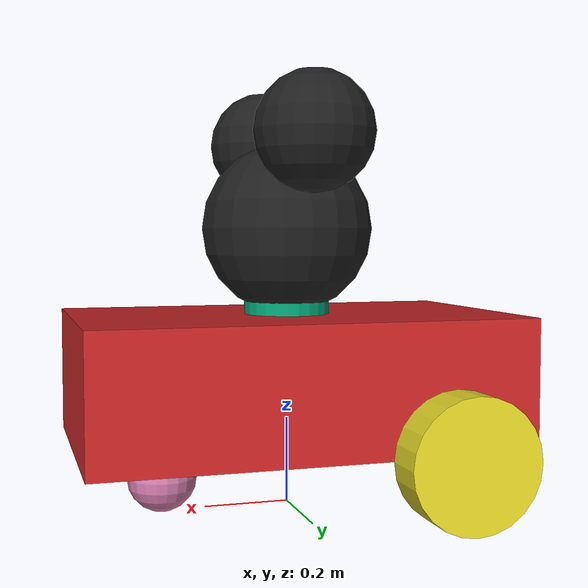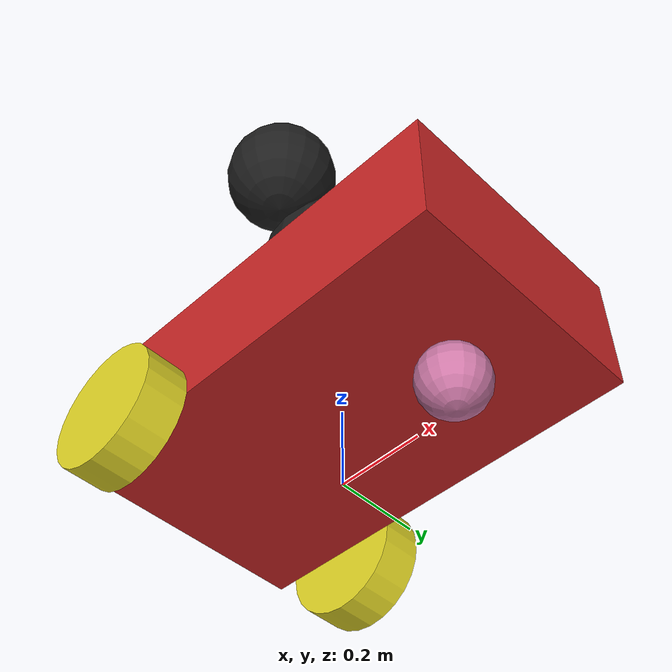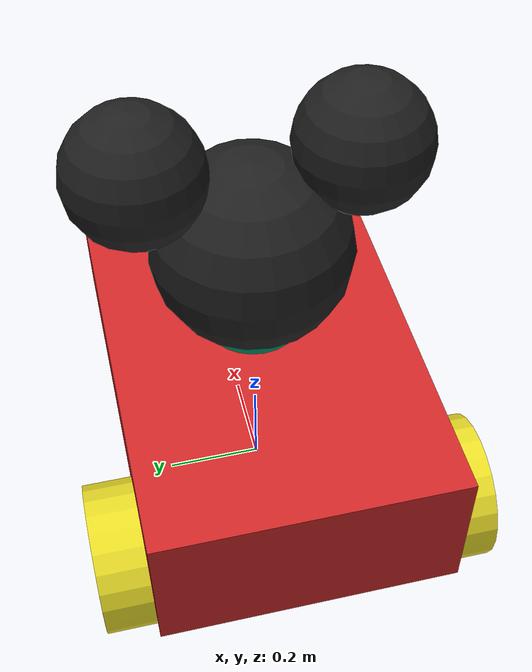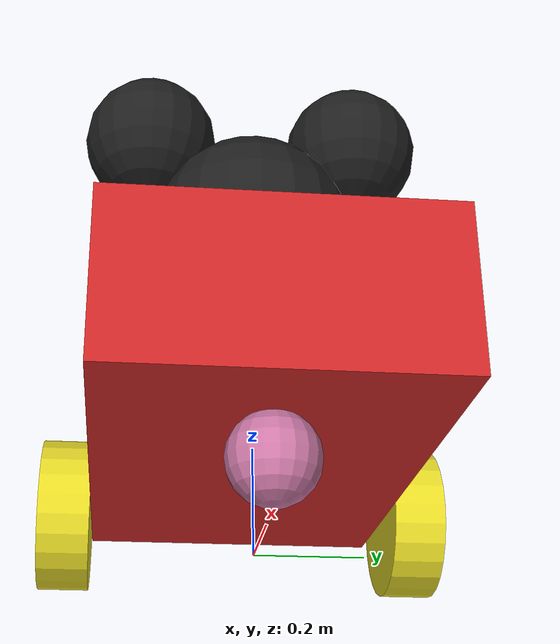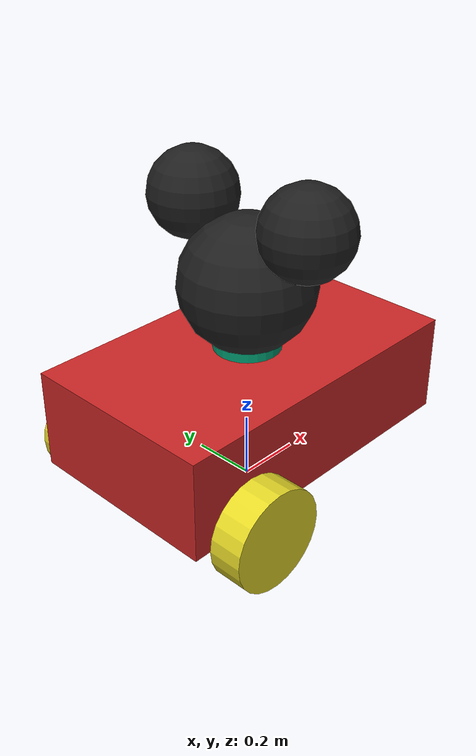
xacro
<?xml version="1.0"?>
<!-- URDF DESCRIPTION OF THE DIFFERENTIAL DRIVE ROBOT               -->
<!-- Made by Aleksandar Haber                                       -->
<!-- See the license!                                               -->
<!-- This code is the ownership of Aleksandar Haber                 -->
<!-- FOR ALL THE DIMENSIONS SEE THE PDF FILES THAT COME WITH THIS TUTORIAL  -->
<robot name="differential_drive_robot" xmlns:xacro="https://www.ros.org/wiki/xacro">

  <!--            Geometry  and constants                             -->

  <!-- Pi constant -->
  <xacro:property name="pi_const" value="3.14159265"/>

  <!-- Body dimensions -->
  <xacro:property name="a" value="1"  />
  <xacro:property name="b" value="0.3" />
  <xacro:property name="c" value="0.6"/>

  <!-- Wheel dimensions -->
  <xacro:property name="r" value="0.15"/>  <!-- drive wheel radius -->
  <xacro:property name="d" value="0.1"/>   <!-- drive wheel width -->

  <xacro:property name="s1" value="${b/2+r}"/>
  <xacro:property name="s2" value="${2*r}"/>
  <xacro:property name="s3" value="${2*r}"/>              <!-- caster X offset -->
  <xacro:property name="s4" value="${c/2+d/2}"/>

  <!--     Mass and inertia                                           -->

  <!-- Material density -->
  <xacro:property name="d1" value="2710.0"/>
  <xacro:property name="d2" value="2710.0"/>
  <xacro:property name="d3" value="2710.0"/>

  <!-- Robot body mass, wheel mass -->
  <xacro:property name="m1" value="${d1*a*b*c}"/>
  <xacro:property name="m2" value="${d2*pi_const*r*r*d}"/>

  <!-- Moments of inertia of the robot body -->
  <xacro:property name="Ix_body" value="${(1/12)*m1*(b*b+c*c) }" />
  <xacro:property name="Iy_body" value="${(1/12)*m1*(a*a+b*b) }" />
  <xacro:property name="Iz_body" value="${(1/12)*m1*(a*a+c*c) }" />

  <!-- Moments of inertia of the drive wheel -->
  <xacro:property name="Iz_wheel" value="${0.5*m2*r*r}" />
  <xacro:property name="I_wheel" value="${(1.0/12.0)*m2*(3.0*r*r+d*d)}" />

  <!-- Body inertia macro -->
  <xacro:macro name="inertia_body">
    <inertial>
      <origin rpy="0 0 0" xyz="0 0 ${s1}"/>
      <mass value="${m1}"/>
      <inertia ixx="${Ix_body}" ixy="0.0" ixz="0.0" iyy="${Iy_body}" iyz="0" izz="${Iz_body}" />
    </inertial>
  </xacro:macro>

  <!-- Drive wheel inertia macro -->
  <xacro:macro name="inertia_wheel">
    <inertial>
      <origin rpy="1.570795 0 0" xyz="0 0 0"/>
      <mass value="${m2}"/>
      <inertia ixx="${I_wheel}" ixy="0.0" ixz="0.0" iyy="${I_wheel}" iyz="0" izz="${Iz_wheel}" />
    </inertial>
  </xacro:macro>

  <!--     Aesthetic top ball (with collision)                        -->

  <xacro:property name="r_ball" value="0.2"/>
  <xacro:property name="d_ball" value="${d3}"/>
  <xacro:property name="m_ball" value="${d_ball*(4.0/3.0)*pi_const*r_ball*r_ball*r_ball}"/>
  <xacro:property name="I_ball" value="${(2.0/5.0)*m_ball*r_ball*r_ball}"/>

  <xacro:macro name="inertia_ball">
    <inertial>
      <origin rpy="0 0 0" xyz="0 0 0"/>
      <mass value="${m_ball}"/>
      <inertia ixx="${I_ball}" ixy="0.0" ixz="0.0"
               iyy="${I_ball}" iyz="0.0"
               izz="${I_ball}" />
    </inertial>
  </xacro:macro>

  <!--     Aesthetic ear (with collision)                             -->

  <xacro:property name="r_ear" value="0.1333"/>
  <xacro:property name="d_ear" value="${d3}"/>
  <xacro:property name="m_ear" value="${d_ear*(4.0/3.0)*pi_const*r_ear*r_ear*r_ear}"/>
  <xacro:property name="I_ear" value="${(2.0/5.0)*m_ear*r_ear*r_ear}"/>

  <xacro:macro name="inertia_ear">
    <inertial>
      <origin rpy="0 0 0" xyz="0 0 0"/>
      <mass value="${m_ear}"/>
      <inertia ixx="${I_ear}" ixy="0.0" ixz="0.0"
               iyy="${I_ear}" iyz="0.0"
               izz="${I_ear}" />
    </inertial>
  </xacro:macro>

  <!--     BALL CASTER (free-rolling ball using 3 joints)             -->

  <!-- Ball caster radius (can be smaller than drive wheels) -->
  <xacro:property name="r_bc" value="0.08"/>
  <xacro:property name="m_bc" value="0.3"/>
  <xacro:property name="I_bc" value="${(2.0/5.0)*m_bc*r_bc*r_bc}"/>

  <xacro:macro name="inertia_ball_caster">
    <inertial>
      <origin rpy="0 0 0" xyz="0 0 0"/>
      <mass value="${m_bc}"/>
      <inertia ixx="${I_bc}" ixy="0" ixz="0"
               iyy="${I_bc}" iyz="0"
               izz="${I_bc}" />
    </inertial>
  </xacro:macro>

  <!-- small intermediate link inertial -->
  <xacro:macro name="inertia_small_link">
    <inertial>
      <origin rpy="0 0 0" xyz="0 0 0"/>
      <mass value="0.05"/>
      <inertia ixx="1e-4" ixy="0" ixz="0"
               iyy="1e-4" iyz="0"
               izz="1e-4" />
    </inertial>
  </xacro:macro>

  <!--            Include additional files                           -->

  <xacro:include filename="$(find mobile_robot)/model/robot.gazebo" />

  <!-- FROM HERE WE DEFINE LINKS, JOINTS                             -->

  <!-- Fictious link -->
  <link name="base_footprint"> </link>
  <joint name="body_link_joint" type="fixed">
    <parent link="base_footprint"/>
    <child link="body_link"/>
  </joint>

  <!-- Body -->
  <link name="body_link">
    <visual>
      <geometry>
        <box size="${a} ${c} ${b}" />
      </geometry>
      <origin rpy="0 0 0" xyz="0 0 ${s1}"/>
    </visual>

    <collision>
      <geometry>
        <box size="${a} ${c} ${b}" />
      </geometry>
      <origin rpy="0 0 0" xyz="0 0 ${s1}"/>
    </collision>

    <xacro:inertia_body />
  </link>

  <!-- Right wheel -->
  <joint name="wheel1_joint" type="continuous" >
    <parent link="body_link"/>
    <child link="wheel1_link" />
    <origin xyz="${-s2} ${-s4} ${r}" rpy="0 0 0" />
    <axis xyz="0 1 0"/>
    <limit effort="50000" velocity="10" />
    <dynamics damping="1.0" friction="1.0" />
  </joint>

  <link name="wheel1_link">
    <visual>
      <origin rpy="1.570795 0 0" xyz="0 0 0"/>
      <geometry>
        <cylinder length="${d}" radius="${r}"/>
      </geometry>
    </visual>

    <collision>
      <origin rpy="1.570795 0 0" xyz="0 0 0"/>
      <geometry>
        <cylinder length="${d}" radius="${r}"/>
      </geometry>
    </collision>

    <xacro:inertia_wheel />
  </link>

  <!-- Left wheel -->
  <joint name="wheel2_joint" type="continuous" >
    <parent link="body_link"/>
    <child link="wheel2_link" />
    <origin xyz="${-s2} ${s4} ${r}" rpy="0 0 0" />
    <axis xyz="0 1 0"/>
    <limit effort="50000" velocity="10" />
    <dynamics damping="1.0" friction="1.0" />
  </joint>

  <link name="wheel2_link">
    <visual>
      <origin rpy="1.570795 0 0" xyz="0 0 0"/>
      <geometry>
        <cylinder length="${d}" radius="${r}"/>
      </geometry>
    </visual>

    <collision>
      <origin rpy="1.570795 0 0" xyz="0 0 0"/>
      <geometry>
        <cylinder length="${d}" radius="${r}"/>
      </geometry>
    </collision>

    <xacro:inertia_wheel />
  </link>

  <!-- BALL CASTER (replaces old fixed caster sphere)                -->

  <!-- Link: yaw -->
  <link name="caster_yaw_link">
    <xacro:inertia_small_link />
  </link>

  <joint name="caster_yaw_joint" type="continuous">
    <parent link="body_link"/>
    <child  link="caster_yaw_link"/>

    <!-- Critical: ball center height should be r_bc above ground -->
    <origin xyz="${s3} 0 ${r_bc}" rpy="0 0 0"/>

    <axis xyz="0 0 1"/>
    <dynamics damping="0.02" friction="0.0"/>
  </joint>

  <!-- Link: pitch -->
  <link name="caster_pitch_link">
    <xacro:inertia_small_link />
  </link>

  <joint name="caster_pitch_joint" type="continuous">
    <parent link="caster_yaw_link"/>
    <child  link="caster_pitch_link"/>
    <origin xyz="0 0 0" rpy="0 0 0"/>
    <axis xyz="0 1 0"/>
    <dynamics damping="0.02" friction="0.0"/>
  </joint>

  <!-- Link: roll + actual ball collision -->
  <link name="caster_ball_link">
    <visual>
      <origin rpy="0 0 0" xyz="0 0 0"/>
      <geometry>
        <sphere radius="${r_bc}" />
      </geometry>
    </visual>

    <collision>
      <origin rpy="0 0 0" xyz="0 0 0"/>
      <geometry>
        <sphere radius="${r_bc}" />
      </geometry>
    </collision>

    <xacro:inertia_ball_caster />
  </link>

  <joint name="caster_roll_joint" type="continuous">
    <parent link="caster_pitch_link"/>
    <child  link="caster_ball_link"/>
    <origin xyz="0 0 0" rpy="0 0 0"/>
    <axis xyz="1 0 0"/>
    <dynamics damping="0.02" friction="0.0"/>
  </joint>

  <!-- Ball on top of chassis                                        -->

  <joint name="top_ball_joint" type="continuous">
    <parent link="body_link"/>
    <child link="top_ball_link"/>
    <origin xyz="0 0 ${s1 + b/2 + r_ball}" rpy="0 0 0"/>
    <axis xyz="0 0 1"/>
    <limit effort="5.0" velocity="2.0"/>
    <dynamics damping="0.2" friction="0.0"/>
  </joint>

  <link name="top_ball_link">
    <visual>
      <origin xyz="0 0 0" rpy="0 0 0"/>
      <geometry>
        <sphere radius="${r_ball}"/>
      </geometry>
    </visual>

    <collision>
      <origin xyz="0 0 0" rpy="0 0 0"/>
      <geometry>
        <sphere radius="${r_ball}"/>
      </geometry>
    </collision>

    <xacro:inertia_ball />
  </link>

  <!-- Left ear -->
  <joint name="left_ear_joint" type="fixed">
    <parent link="top_ball_link"/>
    <child link="left_ear_link"/>
    <origin xyz="0 ${r_ball*0.7071 + r_ear*0.5} ${r_ball*0.7071 + r_ear*0.5}" rpy="0 0 0"/>
  </joint>

  <link name="left_ear_link">
    <visual>
      <origin xyz="0 0 0" rpy="0 0 0"/>
      <geometry>
        <sphere radius="${r_ear}"/>
      </geometry>
    </visual>

    <collision>
      <origin xyz="0 0 0" rpy="0 0 0"/>
      <geometry>
        <sphere radius="${r_ear}"/>
      </geometry>
    </collision>

    <xacro:inertia_ear />
  </link>

  <!-- Right ear -->
  <joint name="right_ear_joint" type="fixed">
    <parent link="top_ball_link"/>
    <child link="right_ear_link"/>
    <origin xyz="0 ${-r_ball*0.7071 - r_ear*0.5} ${r_ball*0.7071 + r_ear*0.5}" rpy="0 0 0"/>
  </joint>

  <link name="right_ear_link">
    <visual>
      <origin xyz="0 0 0" rpy="0 0 0"/>
      <geometry>
        <sphere radius="${r_ear}"/>
      </geometry>
    </visual>

    <collision>
      <origin xyz="0 0 0" rpy="0 0 0"/>
      <geometry>
        <sphere radius="${r_ear}"/>
      </geometry>
    </collision>

    <xacro:inertia_ear />
  </link>

  <!-- LIDAR -->
  <joint name="lidar_joint" type="fixed">
    <origin xyz="0.0 0 ${b+r}" rpy="0 0 0"/>
    <parent link="body_link"/>
    <child link="lidar_link"/>
    <axis xyz="0 1 0" rpy="0 0 0"/>
  </joint>

  <link name='lidar_link'>
    <visual>
      <origin xyz="0 0 0.05" rpy="0 0 0"/>
      <geometry>
        <cylinder length="0.1" radius="0.1"/>
      </geometry>
    </visual>

    <collision name='collision'>
      <origin xyz="0 0 0.05" rpy="0 0 0"/>
      <geometry>
        <cylinder length="0.1" radius="0.1"/>
      </geometry>
    </collision>

    <inertial>
      <mass value="1e-6"/>
      <origin xyz="0 0 0" rpy="0 0 0"/>
      <inertia ixx="1e-6" ixy="0" ixz="0"
               iyy="1e-6" iyz="0" izz="1e-6"/>
    </inertial>
  </link>

</robot>
